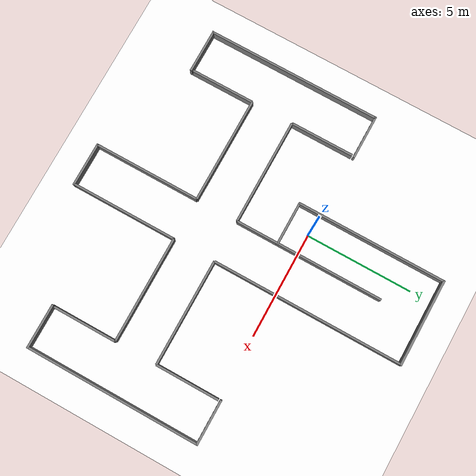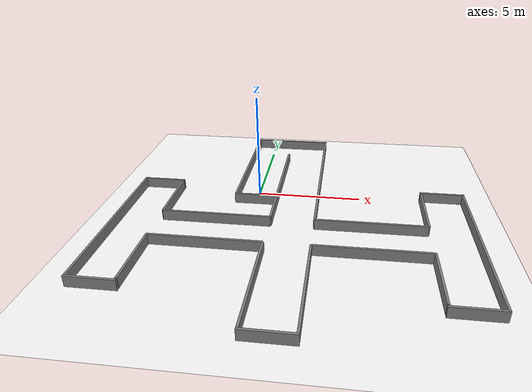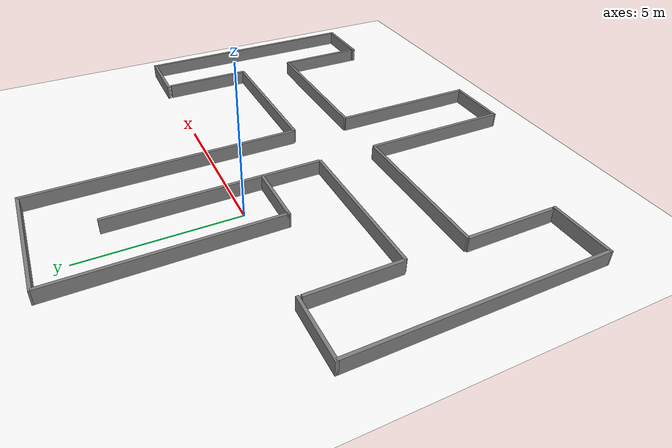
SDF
<sdf version="1.9">
 <world name="step_by_step_city">
  <physics name="1ms" type="ignored">
   <max_step_size>0.001</max_step_size>
   <real_time_factor>1</real_time_factor>
   <real_time_update_rate>1000</real_time_update_rate>
  </physics>
  <plugin name="gz::sim::systems::Physics" filename="ignition-gazebo-physics-system"/>
  <plugin name="gz::sim::systems::UserCommands" filename="ignition-gazebo-user-commands-system"/>
  <plugin name="gz::sim::systems::SceneBroadcaster" filename="ignition-gazebo-scene-broadcaster-system"/>
  <plugin name="gz::sim::systems::Contact" filename="ignition-gazebo-contact-system"/>
  <gravity>0 0 -9.8</gravity>
  <magnetic_field>6e-06 2.3e-05 -4.2e-05</magnetic_field>
  <atmosphere type="adiabatic"/>
  <scene><ambient>0.4 0.4 0.4 1</ambient><background>0.7 0.7 0.7 1</background><shadows>true</shadows></scene>
  <light name="sun" type="directional">
   <pose>0 0 10 0 -0 0</pose>
   <cast_shadows>false</cast_shadows>
   <intensity>1.5</intensity>
   <direction>-0.5 0.1 -0.9</direction>
   <diffuse>1 1 1 1</diffuse>
   <specular>0.8 0.8 0.8 1</specular>
  </light>
  <model name="ground_plane">
   <static>true</static>
   <link name="link">
    <collision name="collision">
     <geometry><plane><normal>0 0 1</normal><size>100 100</size></plane></geometry>
    </collision>
    <visual name="visual">
     <geometry><plane><normal>0 0 1</normal><size>100 100</size></plane></geometry>
     <material>
      <diffuse>1 1 1 1</diffuse>
      <specular>0.2 0.2 0.2 1</specular>
      <pbr>
       <metal>
        <albedo_map>model://asphalt_plane/materials/textures/tarmac.png</albedo_map>
        <metalness>0.0</metalness>
       </metal>
      </pbr>
     </material>
    </visual>
   </link>
  </model>
  <model name="wall_spawn_back">
   <static>true</static>
   <pose>0 -1.0 0.25 0 0 0</pose>
   <link name="link">
    <collision name="collision"><geometry><box><size>2.1 0.1 0.5</size></box></geometry></collision>
    <visual name="visual">
     <geometry><box><size>2.1 0.1 0.5</size></box></geometry>
     <material><ambient>0.5 0.5 0.5 1</ambient></material>
    </visual>
   </link>
  </model>
  <model name="wall_north_left">
   <static>true</static>
   <pose>-1.0 2.5 0.25 0 0 0</pose>
   <link name="link">
    <collision name="collision"><geometry><box><size>0.1 7.0 0.5</size></box></geometry></collision>
    <visual name="visual">
     <geometry><box><size>0.1 7.0 0.5</size></box></geometry>
     <material><ambient>0.5 0.5 0.5 1</ambient></material>
    </visual>
   </link>
  </model>
  <model name="wall_center_div">
   <static>true</static>
   <pose>1 0.51606 0.25 0 -0 0</pose>
   <link name="link">
    <collision name="collision"><geometry><box><size>0.1 7 0.5</size></box></geometry></collision>
    <visual name="visual">
     <geometry><box><size>0.1 7 0.5</size></box></geometry>
     <material><ambient>0.5 0.5 0.5 1</ambient></material>
    </visual>
   </link>
  </model>
  <model name="wall_uturn_outer">
   <static>true</static>
   <pose>1.0 6.0 0.25 0 0 0</pose>
   <link name="link">
    <collision name="collision"><geometry><box><size>4.1 0.1 0.5</size></box></geometry></collision>
    <visual name="visual">
     <geometry><box><size>4.1 0.1 0.5</size></box></geometry>
     <material><ambient>0.5 0.5 0.5 1</ambient></material>
    </visual>
   </link>
  </model>
  <model name="wall_south_right">
   <static>true</static>
   <pose>3.0 1.5 0.25 0 0 0</pose>
   <link name="link">
    <collision name="collision"><geometry><box><size>0.1 9.0 0.5</size></box></geometry></collision>
    <visual name="visual">
     <geometry><box><size>0.1 9.0 0.5</size></box></geometry>
     <material><ambient>0.5 0.5 0.5 1</ambient></material>
    </visual>
   </link>
  </model>
  <model name="wall_plus_west_top">
   <static>true</static>
   <pose>-1.5 -3.0 0.25 0 0 0</pose>
   <link name="link">
    <collision name="collision"><geometry><box><size>5.0 0.1 0.5</size></box></geometry></collision>
    <visual name="visual">
     <geometry><box><size>5.0 0.1 0.5</size></box></geometry>
     <material><ambient>0.5 0.5 0.5 1</ambient></material>
    </visual>
   </link>
  </model>
  <model name="wall_plus_west_bot">
   <static>true</static>
   <pose>-1.5 -5.0 0.25 0 0 0</pose>
   <link name="link">
    <collision name="collision"><geometry><box><size>5.0 0.1 0.5</size></box></geometry></collision>
    <visual name="visual">
     <geometry><box><size>5.0 0.1 0.5</size></box></geometry>
     <material><ambient>0.5 0.5 0.5 1</ambient></material>
    </visual>
   </link>
  </model>
  <model name="wall_plus_east_top">
   <static>true</static>
   <pose>5.5 -3.0 0.25 0 0 0</pose>
   <link name="link">
    <collision name="collision"><geometry><box><size>5.0 0.1 0.5</size></box></geometry></collision>
    <visual name="visual">
     <geometry><box><size>5.0 0.1 0.5</size></box></geometry>
     <material><ambient>0.5 0.5 0.5 1</ambient></material>
    </visual>
   </link>
  </model>
  <model name="wall_plus_east_bot">
   <static>true</static>
   <pose>5.5 -5.0 0.25 0 0 0</pose>
   <link name="link">
    <collision name="collision"><geometry><box><size>5.0 0.1 0.5</size></box></geometry></collision>
    <visual name="visual">
     <geometry><box><size>5.0 0.1 0.5</size></box></geometry>
     <material><ambient>0.5 0.5 0.5 1</ambient></material>
    </visual>
   </link>
  </model>
  <model name="wall_plus_fwd_left">
   <static>true</static>
   <pose>3.0 -7.5 0.25 0 0 0</pose>
   <link name="link">
    <collision name="collision"><geometry><box><size>0.1 5.0 0.5</size></box></geometry></collision>
    <visual name="visual">
     <geometry><box><size>0.1 5.0 0.5</size></box></geometry>
     <material><ambient>0.5 0.5 0.5 1</ambient></material>
    </visual>
   </link>
  </model>
  <model name="wall_plus_fwd_right">
   <static>true</static>
   <pose>1.0 -7.5 0.25 0 0 0</pose>
   <link name="link">
    <collision name="collision"><geometry><box><size>0.1 5.0 0.5</size></box></geometry></collision>
    <visual name="visual">
     <geometry><box><size>0.1 5.0 0.5</size></box></geometry>
     <material><ambient>0.5 0.5 0.5 1</ambient></material>
    </visual>
   </link>
  </model>
  <model name="wall_plus_fwd_end">
   <static>true</static>
   <pose>2.0 -10.0 0.25 0 0 0</pose>
   <link name="link">
    <collision name="collision"><geometry><box><size>2.1 0.1 0.5</size></box></geometry></collision>
    <visual name="visual">
     <geometry><box><size>2.1 0.1 0.5</size></box></geometry>
     <material><ambient>0.5 0.5 0.5 1</ambient></material>
    </visual>
   </link>
  </model>
  <model name="wall_west_t_inner_top">
   <static>true</static>
   <pose>-4.0 -1.5 0.25 0 0 0</pose>
   <link name="link">
    <collision name="collision"><geometry><box><size>0.1 3.0 0.5</size></box></geometry></collision>
    <visual name="visual">
     <geometry><box><size>0.1 3.0 0.5</size></box></geometry>
     <material><ambient>0.5 0.5 0.5 1</ambient></material>
    </visual>
   </link>
  </model>
  <model name="wall_west_t_inner_bot">
   <static>true</static>
   <pose>-4.0 -6.5 0.25 0 0 0</pose>
   <link name="link">
    <collision name="collision"><geometry><box><size>0.1 3.0 0.5</size></box></geometry></collision>
    <visual name="visual">
     <geometry><box><size>0.1 3.0 0.5</size></box></geometry>
     <material><ambient>0.5 0.5 0.5 1</ambient></material>
    </visual>
   </link>
  </model>
  <model name="wall_west_t_outer">
   <static>true</static>
   <pose>-6.0 -4.0 0.25 0 0 0</pose>
   <link name="link">
    <collision name="collision"><geometry><box><size>0.1 8.2 0.5</size></box></geometry></collision>
    <visual name="visual">
     <geometry><box><size>0.1 8.2 0.5</size></box></geometry>
     <material><ambient>0.5 0.5 0.5 1</ambient></material>
    </visual>
   </link>
  </model>
  <model name="wall_west_t_cap_top">
   <static>true</static>
   <pose>-5.0 0.1 0.25 0 0 0</pose>
   <link name="link">
    <collision name="collision"><geometry><box><size>2.1 0.1 0.5</size></box></geometry></collision>
    <visual name="visual">
     <geometry><box><size>2.1 0.1 0.5</size></box></geometry>
     <material><ambient>0.5 0.5 0.5 1</ambient></material>
    </visual>
   </link>
  </model>
  <model name="wall_west_t_cap_bot">
   <static>true</static>
   <pose>-5.0 -8.1 0.25 0 0 0</pose>
   <link name="link">
    <collision name="collision"><geometry><box><size>2.1 0.1 0.5</size></box></geometry></collision>
    <visual name="visual">
     <geometry><box><size>2.1 0.1 0.5</size></box></geometry>
     <material><ambient>0.5 0.5 0.5 1</ambient></material>
    </visual>
   </link>
  </model>
  <model name="wall_east_t_inner_top">
   <static>true</static>
   <pose>8.0 -1.5 0.25 0 0 0</pose>
   <link name="link">
    <collision name="collision"><geometry><box><size>0.1 3.0 0.5</size></box></geometry></collision>
    <visual name="visual">
     <geometry><box><size>0.1 3.0 0.5</size></box></geometry>
     <material><ambient>0.5 0.5 0.5 1</ambient></material>
    </visual>
   </link>
  </model>
  <model name="wall_east_t_inner_bot">
   <static>true</static>
   <pose>8.0 -6.5 0.25 0 0 0</pose>
   <link name="link">
    <collision name="collision"><geometry><box><size>0.1 3.0 0.5</size></box></geometry></collision>
    <visual name="visual">
     <geometry><box><size>0.1 3.0 0.5</size></box></geometry>
     <material><ambient>0.5 0.5 0.5 1</ambient></material>
    </visual>
   </link>
  </model>
  <model name="wall_east_t_outer">
   <static>true</static>
   <pose>10.0 -4.0 0.25 0 0 0</pose>
   <link name="link">
    <collision name="collision"><geometry><box><size>0.1 8.2 0.5</size></box></geometry></collision>
    <visual name="visual">
     <geometry><box><size>0.1 8.2 0.5</size></box></geometry>
     <material><ambient>0.5 0.5 0.5 1</ambient></material>
    </visual>
   </link>
  </model>
  <model name="wall_east_t_cap_top">
   <static>true</static>
   <pose>9.0 0.1 0.25 0 0 0</pose>
   <link name="link">
    <collision name="collision"><geometry><box><size>2.1 0.1 0.5</size></box></geometry></collision>
    <visual name="visual">
     <geometry><box><size>2.1 0.1 0.5</size></box></geometry>
     <material><ambient>0.5 0.5 0.5 1</ambient></material>
    </visual>
   </link>
  </model>
  <model name="wall_east_t_cap_bot">
   <static>true</static>
   <pose>9.0 -8.1 0.25 0 0 0</pose>
   <link name="link">
    <collision name="collision"><geometry><box><size>2.1 0.1 0.5</size></box></geometry></collision>
    <visual name="visual">
     <geometry><box><size>2.1 0.1 0.5</size></box></geometry>
     <material><ambient>0.5 0.5 0.5 1</ambient></material>
    </visual>
   </link>
  </model>
 </world>
</sdf>
